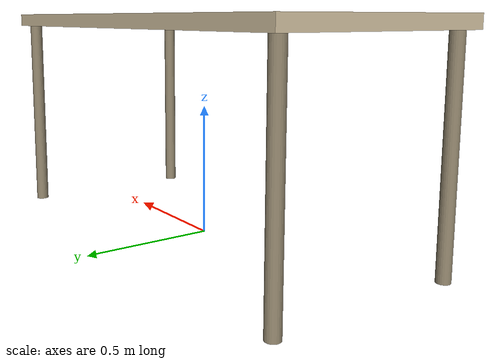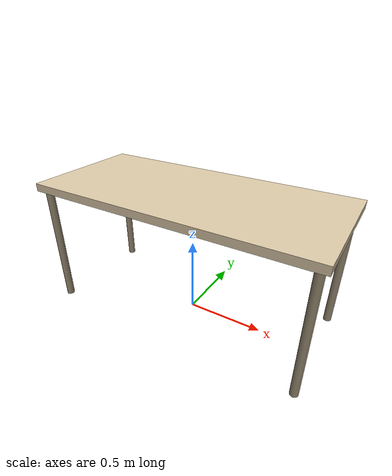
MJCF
<mujoco>
  <asset>
    <material name="table_wood"
              rgba="0.85 0.78 0.65 1"
              specular="0.1"
              shininess="0.15"/>
    <material name="table_leg"
              rgba="0.6 0.55 0.45 1"
              specular="0.05"
              shininess="0.1"/>
  </asset>

  <worldbody>

    <!-- Table: fixed body (no joints) centred at origin -->
    <body name="table" pos="0 0 0">

      <!-- Tabletop slab: surface at Z=0.85, half-thickness 0.025 → centre 0.825 -->
      <geom name="tabletop"
            type="box"
            size="0.90 0.40 0.025"
            pos="0 0 0.825"
            material="table_wood"
            condim="3"
            contype="2" conaffinity="3"/>

      <!-- Four legs at corners (X ±0.85, Y ±0.35) -->
      <geom name="leg_fl"
            type="cylinder"
            size="0.025 0.4"
            pos=" 0.85  0.35 0.4"
            material="table_leg"/>
      <geom name="leg_fr"
            type="cylinder"
            size="0.025 0.4"
            pos=" 0.85 -0.35 0.4"
            material="table_leg"/>
      <geom name="leg_bl"
            type="cylinder"
            size="0.025 0.4"
            pos="-0.85  0.35 0.4"
            material="table_leg"/>
      <geom name="leg_br"
            type="cylinder"
            size="0.025 0.4"
            pos="-0.85 -0.35 0.4"
            material="table_leg"/>

    </body>

  </worldbody>
</mujoco>
